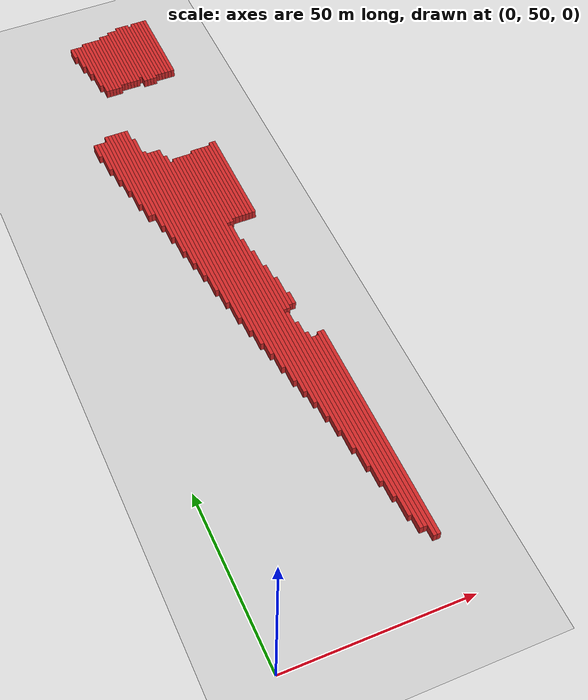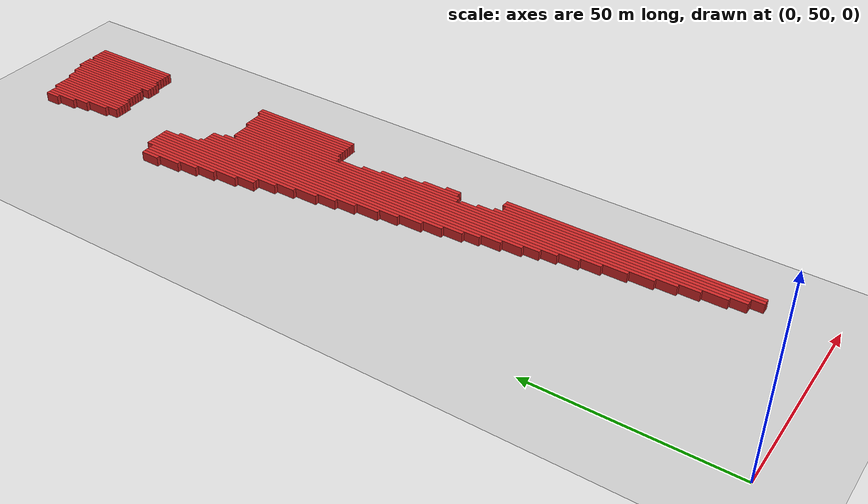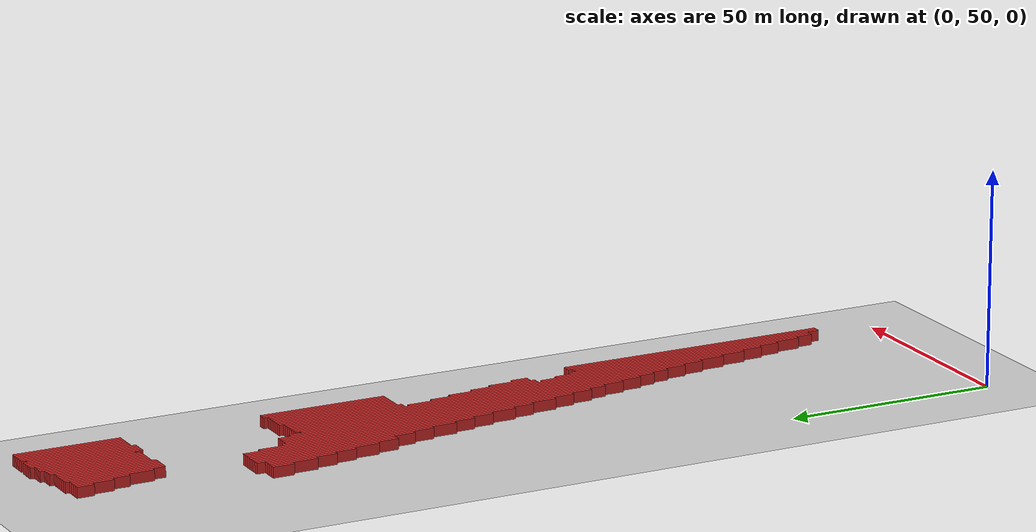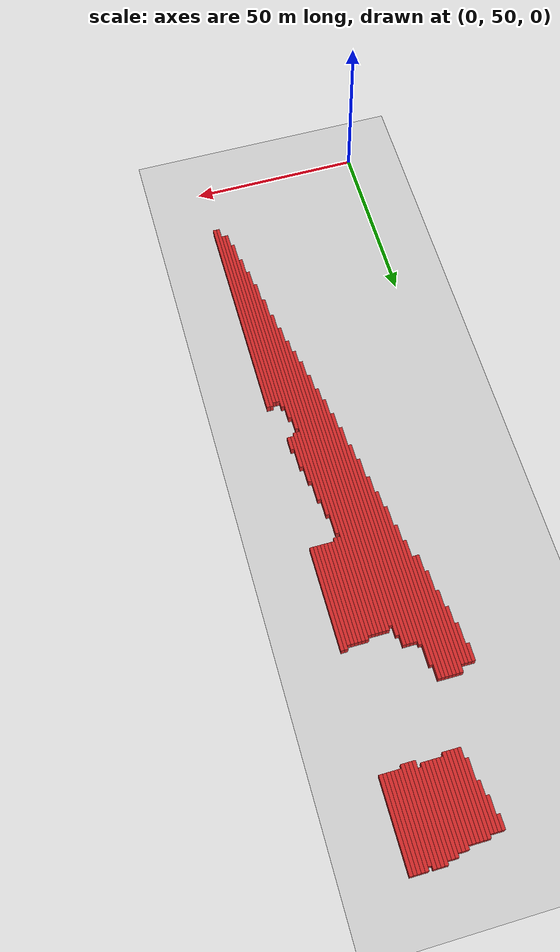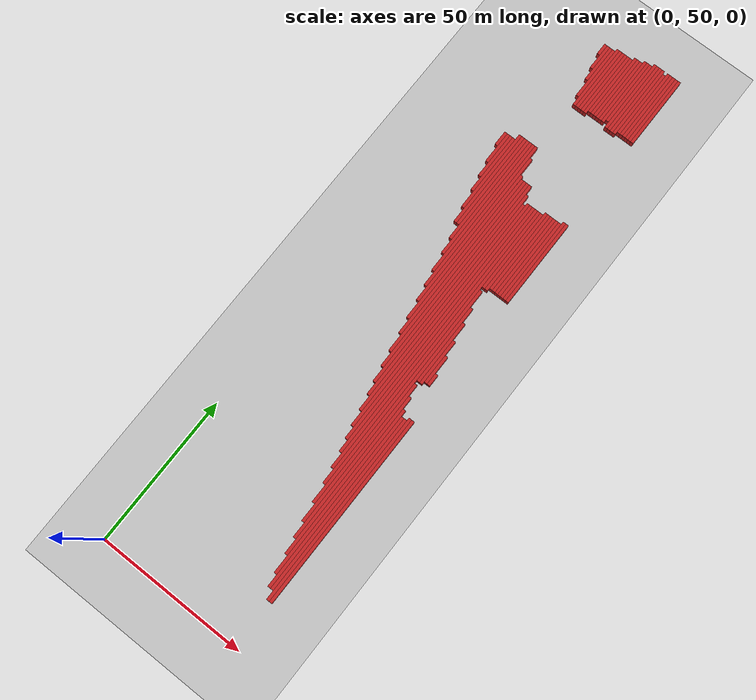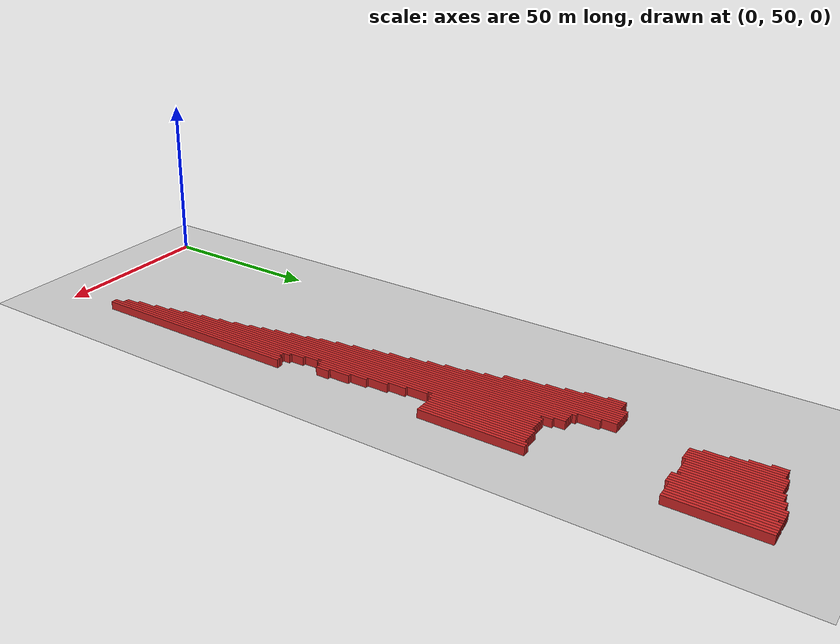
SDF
<sdf version="1.4">
 <world name="1_wall">
  <model name="ground_plane">
   <static>1</static>
   <link name="link">
    <collision name="collision">
     <geometry><plane><normal>0 0 1</normal><size>1000 1000</size></plane></geometry>
     <surface><friction><ode><mu>100</mu><mu2>50</mu2></ode></friction></surface>
    </collision>
    <visual name="visual">
     <cast_shadows>0</cast_shadows>
     <geometry><plane><normal>0 0 1</normal><size>10000 10000</size></plane></geometry>
     <material>
      <script><uri>file://media/materials/scripts/gazebo.material</uri><name>Gazebo/Grey</name></script>
     </material>
    </visual>
    <velocity_decay><linear>0</linear><angular>0</angular></velocity_decay>
   </link>
  </model>
  <model name="Wall_0">
   <static>1</static>
   <link name="Wall_0">
    <collision name="Wall_Collision_0">
     <geometry><box><size>5.0 1.0 2.5</size></box></geometry>
     <pose>0 0 1.25 0 -0 0</pose>
    </collision>
    <visual name="Wall_Visual_0">
     <pose>0 0 1.25 0 -0 0</pose>
     <geometry><box><size>5.0 1.0 2.5</size></box></geometry>
     <material>
      <script><uri>file://media/materials/scripts/gazebo.material</uri><name>Gazebo/Red</name></script>
     </material>
    </visual>
    <velocity_decay><linear>0</linear><angular>0</angular></velocity_decay>
    <pose>16.5 215.5 0 0 0 1.5707963267948966</pose>
   </link>
  </model>
  <model name="Wall_1">
   <static>1</static>
   <link name="Wall_1">
    <collision name="Wall_Collision_1">
     <geometry><box><size>11.0 1.0 2.5</size></box></geometry>
     <pose>0 0 1.25 0 -0 0</pose>
    </collision>
    <visual name="Wall_Visual_1">
     <pose>0 0 1.25 0 -0 0</pose>
     <geometry><box><size>11.0 1.0 2.5</size></box></geometry>
     <material>
      <script><uri>file://media/materials/scripts/gazebo.material</uri><name>Gazebo/Red</name></script>
     </material>
    </visual>
    <velocity_decay><linear>0</linear><angular>0</angular></velocity_decay>
    <pose>17.5 212.5 0 0 0 1.5707963267948966</pose>
   </link>
  </model>
  <model name="Wall_2">
   <static>1</static>
   <link name="Wall_2">
    <collision name="Wall_Collision_2">
     <geometry><box><size>16.0 1.0 2.5</size></box></geometry>
     <pose>0 0 1.25 0 -0 0</pose>
    </collision>
    <visual name="Wall_Visual_2">
     <pose>0 0 1.25 0 -0 0</pose>
     <geometry><box><size>16.0 1.0 2.5</size></box></geometry>
     <material>
      <script><uri>file://media/materials/scripts/gazebo.material</uri><name>Gazebo/Red</name></script>
     </material>
    </visual>
    <velocity_decay><linear>0</linear><angular>0</angular></velocity_decay>
    <pose>18.5 210.0 0 0 0 1.5707963267948966</pose>
   </link>
  </model>
  <model name="Wall_3">
   <static>1</static>
   <link name="Wall_3">
    <collision name="Wall_Collision_3">
     <geometry><box><size>21.0 1.0 2.5</size></box></geometry>
     <pose>0 0 1.25 0 -0 0</pose>
    </collision>
    <visual name="Wall_Visual_3">
     <pose>0 0 1.25 0 -0 0</pose>
     <geometry><box><size>21.0 1.0 2.5</size></box></geometry>
     <material>
      <script><uri>file://media/materials/scripts/gazebo.material</uri><name>Gazebo/Red</name></script>
     </material>
    </visual>
    <velocity_decay><linear>0</linear><angular>0</angular></velocity_decay>
    <pose>19.5 207.5 0 0 0 1.5707963267948966</pose>
   </link>
  </model>
  <model name="Wall_4">
   <static>1</static>
   <link name="Wall_4">
    <collision name="Wall_Collision_4">
     <geometry><box><size>29.0 1.0 2.5</size></box></geometry>
     <pose>0 0 1.25 0 -0 0</pose>
    </collision>
    <visual name="Wall_Visual_4">
     <pose>0 0 1.25 0 -0 0</pose>
     <geometry><box><size>29.0 1.0 2.5</size></box></geometry>
     <material>
      <script><uri>file://media/materials/scripts/gazebo.material</uri><name>Gazebo/Red</name></script>
     </material>
    </visual>
    <velocity_decay><linear>0</linear><angular>0</angular></velocity_decay>
    <pose>20.5 205.5 0 0 0 1.5707963267948966</pose>
   </link>
  </model>
  <model name="Wall_5">
   <static>1</static>
   <link name="Wall_5">
    <collision name="Wall_Collision_5">
     <geometry><box><size>34.0 1.0 2.5</size></box></geometry>
     <pose>0 0 1.25 0 -0 0</pose>
    </collision>
    <visual name="Wall_Visual_5">
     <pose>0 0 1.25 0 -0 0</pose>
     <geometry><box><size>34.0 1.0 2.5</size></box></geometry>
     <material>
      <script><uri>file://media/materials/scripts/gazebo.material</uri><name>Gazebo/Red</name></script>
     </material>
    </visual>
    <velocity_decay><linear>0</linear><angular>0</angular></velocity_decay>
    <pose>21.5 203.0 0 0 0 1.5707963267948966</pose>
   </link>
  </model>
  <model name="Wall_6">
   <static>1</static>
   <link name="Wall_6">
    <collision name="Wall_Collision_6">
     <geometry><box><size>34.0 1.0 2.5</size></box></geometry>
     <pose>0 0 1.25 0 -0 0</pose>
    </collision>
    <visual name="Wall_Visual_6">
     <pose>0 0 1.25 0 -0 0</pose>
     <geometry><box><size>34.0 1.0 2.5</size></box></geometry>
     <material>
      <script><uri>file://media/materials/scripts/gazebo.material</uri><name>Gazebo/Red</name></script>
     </material>
    </visual>
    <velocity_decay><linear>0</linear><angular>0</angular></velocity_decay>
    <pose>22.5 203.0 0 0 0 1.5707963267948966</pose>
   </link>
  </model>
  <model name="Wall_7">
   <static>1</static>
   <link name="Wall_7">
    <collision name="Wall_Collision_7">
     <geometry><box><size>39.0 1.0 2.5</size></box></geometry>
     <pose>0 0 1.25 0 -0 0</pose>
    </collision>
    <visual name="Wall_Visual_7">
     <pose>0 0 1.25 0 -0 0</pose>
     <geometry><box><size>39.0 1.0 2.5</size></box></geometry>
     <material>
      <script><uri>file://media/materials/scripts/gazebo.material</uri><name>Gazebo/Red</name></script>
     </material>
    </visual>
    <velocity_decay><linear>0</linear><angular>0</angular></velocity_decay>
    <pose>23.5 200.5 0 0 0 1.5707963267948966</pose>
   </link>
  </model>
  <model name="Wall_8">
   <static>1</static>
   <link name="Wall_8">
    <collision name="Wall_Collision_8">
     <geometry><box><size>4.0 1.0 2.5</size></box></geometry>
     <pose>0 0 1.25 0 -0 0</pose>
    </collision>
    <visual name="Wall_Visual_8">
     <pose>0 0 1.25 0 -0 0</pose>
     <geometry><box><size>4.0 1.0 2.5</size></box></geometry>
     <material>
      <script><uri>file://media/materials/scripts/gazebo.material</uri><name>Gazebo/Red</name></script>
     </material>
    </visual>
    <velocity_decay><linear>0</linear><angular>0</angular></velocity_decay>
    <pose>23.5 258.0 0 0 0 1.5707963267948966</pose>
   </link>
  </model>
  <model name="Wall_9">
   <static>1</static>
   <link name="Wall_9">
    <collision name="Wall_Collision_9">
     <geometry><box><size>44.0 1.0 2.5</size></box></geometry>
     <pose>0 0 1.25 0 -0 0</pose>
    </collision>
    <visual name="Wall_Visual_9">
     <pose>0 0 1.25 0 -0 0</pose>
     <geometry><box><size>44.0 1.0 2.5</size></box></geometry>
     <material>
      <script><uri>file://media/materials/scripts/gazebo.material</uri><name>Gazebo/Red</name></script>
     </material>
    </visual>
    <velocity_decay><linear>0</linear><angular>0</angular></velocity_decay>
    <pose>24.5 198.0 0 0 0 1.5707963267948966</pose>
   </link>
  </model>
  <model name="Wall_10">
   <static>1</static>
   <link name="Wall_10">
    <collision name="Wall_Collision_10">
     <geometry><box><size>9.0 1.0 2.5</size></box></geometry>
     <pose>0 0 1.25 0 -0 0</pose>
    </collision>
    <visual name="Wall_Visual_10">
     <pose>0 0 1.25 0 -0 0</pose>
     <geometry><box><size>9.0 1.0 2.5</size></box></geometry>
     <material>
      <script><uri>file://media/materials/scripts/gazebo.material</uri><name>Gazebo/Red</name></script>
     </material>
    </visual>
    <velocity_decay><linear>0</linear><angular>0</angular></velocity_decay>
    <pose>24.5 255.5 0 0 0 1.5707963267948966</pose>
   </link>
  </model>
  <model name="Wall_11">
   <static>1</static>
   <link name="Wall_11">
    <collision name="Wall_Collision_11">
     <geometry><box><size>50.0 1.0 2.5</size></box></geometry>
     <pose>0 0 1.25 0 -0 0</pose>
    </collision>
    <visual name="Wall_Visual_11">
     <pose>0 0 1.25 0 -0 0</pose>
     <geometry><box><size>50.0 1.0 2.5</size></box></geometry>
     <material>
      <script><uri>file://media/materials/scripts/gazebo.material</uri><name>Gazebo/Red</name></script>
     </material>
    </visual>
    <velocity_decay><linear>0</linear><angular>0</angular></velocity_decay>
    <pose>25.5 195.0 0 0 0 1.5707963267948966</pose>
   </link>
  </model>
  <model name="Wall_12">
   <static>1</static>
   <link name="Wall_12">
    <collision name="Wall_Collision_12">
     <geometry><box><size>13.0 1.0 2.5</size></box></geometry>
     <pose>0 0 1.25 0 -0 0</pose>
    </collision>
    <visual name="Wall_Visual_12">
     <pose>0 0 1.25 0 -0 0</pose>
     <geometry><box><size>13.0 1.0 2.5</size></box></geometry>
     <material>
      <script><uri>file://media/materials/scripts/gazebo.material</uri><name>Gazebo/Red</name></script>
     </material>
    </visual>
    <velocity_decay><linear>0</linear><angular>0</angular></velocity_decay>
    <pose>25.5 253.5 0 0 0 1.5707963267948966</pose>
   </link>
  </model>
  <model name="Wall_13">
   <static>1</static>
   <link name="Wall_13">
    <collision name="Wall_Collision_13">
     <geometry><box><size>55.0 1.0 2.5</size></box></geometry>
     <pose>0 0 1.25 0 -0 0</pose>
    </collision>
    <visual name="Wall_Visual_13">
     <pose>0 0 1.25 0 -0 0</pose>
     <geometry><box><size>55.0 1.0 2.5</size></box></geometry>
     <material>
      <script><uri>file://media/materials/scripts/gazebo.material</uri><name>Gazebo/Red</name></script>
     </material>
    </visual>
    <velocity_decay><linear>0</linear><angular>0</angular></velocity_decay>
    <pose>26.5 192.5 0 0 0 1.5707963267948966</pose>
   </link>
  </model>
  <model name="Wall_14">
   <static>1</static>
   <link name="Wall_14">
    <collision name="Wall_Collision_14">
     <geometry><box><size>19.0 1.0 2.5</size></box></geometry>
     <pose>0 0 1.25 0 -0 0</pose>
    </collision>
    <visual name="Wall_Visual_14">
     <pose>0 0 1.25 0 -0 0</pose>
     <geometry><box><size>19.0 1.0 2.5</size></box></geometry>
     <material>
      <script><uri>file://media/materials/scripts/gazebo.material</uri><name>Gazebo/Red</name></script>
     </material>
    </visual>
    <velocity_decay><linear>0</linear><angular>0</angular></velocity_decay>
    <pose>26.5 250.5 0 0 0 1.5707963267948966</pose>
   </link>
  </model>
  <model name="Wall_15">
   <static>1</static>
   <link name="Wall_15">
    <collision name="Wall_Collision_15">
     <geometry><box><size>56.0 1.0 2.5</size></box></geometry>
     <pose>0 0 1.25 0 -0 0</pose>
    </collision>
    <visual name="Wall_Visual_15">
     <pose>0 0 1.25 0 -0 0</pose>
     <geometry><box><size>56.0 1.0 2.5</size></box></geometry>
     <material>
      <script><uri>file://media/materials/scripts/gazebo.material</uri><name>Gazebo/Red</name></script>
     </material>
    </visual>
    <velocity_decay><linear>0</linear><angular>0</angular></velocity_decay>
    <pose>27.5 188.0 0 0 0 1.5707963267948966</pose>
   </link>
  </model>
  <model name="Wall_16">
   <static>1</static>
   <link name="Wall_16">
    <collision name="Wall_Collision_16">
     <geometry><box><size>23.0 1.0 2.5</size></box></geometry>
     <pose>0 0 1.25 0 -0 0</pose>
    </collision>
    <visual name="Wall_Visual_16">
     <pose>0 0 1.25 0 -0 0</pose>
     <geometry><box><size>23.0 1.0 2.5</size></box></geometry>
     <material>
      <script><uri>file://media/materials/scripts/gazebo.material</uri><name>Gazebo/Red</name></script>
     </material>
    </visual>
    <velocity_decay><linear>0</linear><angular>0</angular></velocity_decay>
    <pose>27.5 249.5 0 0 0 1.5707963267948966</pose>
   </link>
  </model>
  <model name="Wall_17">
   <static>1</static>
   <link name="Wall_17">
    <collision name="Wall_Collision_17">
     <geometry><box><size>56.0 1.0 2.5</size></box></geometry>
     <pose>0 0 1.25 0 -0 0</pose>
    </collision>
    <visual name="Wall_Visual_17">
     <pose>0 0 1.25 0 -0 0</pose>
     <geometry><box><size>56.0 1.0 2.5</size></box></geometry>
     <material>
      <script><uri>file://media/materials/scripts/gazebo.material</uri><name>Gazebo/Red</name></script>
     </material>
    </visual>
    <velocity_decay><linear>0</linear><angular>0</angular></velocity_decay>
    <pose>28.5 182.0 0 0 0 1.5707963267948966</pose>
   </link>
  </model>
  <model name="Wall_18">
   <static>1</static>
   <link name="Wall_18">
    <collision name="Wall_Collision_18">
     <geometry><box><size>23.0 1.0 2.5</size></box></geometry>
     <pose>0 0 1.25 0 -0 0</pose>
    </collision>
    <visual name="Wall_Visual_18">
     <pose>0 0 1.25 0 -0 0</pose>
     <geometry><box><size>23.0 1.0 2.5</size></box></geometry>
     <material>
      <script><uri>file://media/materials/scripts/gazebo.material</uri><name>Gazebo/Red</name></script>
     </material>
    </visual>
    <velocity_decay><linear>0</linear><angular>0</angular></velocity_decay>
    <pose>28.5 249.5 0 0 0 1.5707963267948966</pose>
   </link>
  </model>
  <model name="Wall_19">
   <static>1</static>
   <link name="Wall_19">
    <collision name="Wall_Collision_19">
     <geometry><box><size>60.0 1.0 2.5</size></box></geometry>
     <pose>0 0 1.25 0 -0 0</pose>
    </collision>
    <visual name="Wall_Visual_19">
     <pose>0 0 1.25 0 -0 0</pose>
     <geometry><box><size>60.0 1.0 2.5</size></box></geometry>
     <material>
      <script><uri>file://media/materials/scripts/gazebo.material</uri><name>Gazebo/Red</name></script>
     </material>
    </visual>
    <velocity_decay><linear>0</linear><angular>0</angular></velocity_decay>
    <pose>29.5 179.0 0 0 0 1.5707963267948966</pose>
   </link>
  </model>
  <model name="Wall_20">
   <static>1</static>
   <link name="Wall_20">
    <collision name="Wall_Collision_20">
     <geometry><box><size>23.0 1.0 2.5</size></box></geometry>
     <pose>0 0 1.25 0 -0 0</pose>
    </collision>
    <visual name="Wall_Visual_20">
     <pose>0 0 1.25 0 -0 0</pose>
     <geometry><box><size>23.0 1.0 2.5</size></box></geometry>
     <material>
      <script><uri>file://media/materials/scripts/gazebo.material</uri><name>Gazebo/Red</name></script>
     </material>
    </visual>
    <velocity_decay><linear>0</linear><angular>0</angular></velocity_decay>
    <pose>29.5 249.5 0 0 0 1.5707963267948966</pose>
   </link>
  </model>
  <model name="Wall_21">
   <static>1</static>
   <link name="Wall_21">
    <collision name="Wall_Collision_21">
     <geometry><box><size>66.0 1.0 2.5</size></box></geometry>
     <pose>0 0 1.25 0 -0 0</pose>
    </collision>
    <visual name="Wall_Visual_21">
     <pose>0 0 1.25 0 -0 0</pose>
     <geometry><box><size>66.0 1.0 2.5</size></box></geometry>
     <material>
      <script><uri>file://media/materials/scripts/gazebo.material</uri><name>Gazebo/Red</name></script>
     </material>
    </visual>
    <velocity_decay><linear>0</linear><angular>0</angular></velocity_decay>
    <pose>30.5 176.0 0 0 0 1.5707963267948966</pose>
   </link>
  </model>
  <model name="Wall_22">
   <static>1</static>
   <link name="Wall_22">
    <collision name="Wall_Collision_22">
     <geometry><box><size>23.0 1.0 2.5</size></box></geometry>
     <pose>0 0 1.25 0 -0 0</pose>
    </collision>
    <visual name="Wall_Visual_22">
     <pose>0 0 1.25 0 -0 0</pose>
     <geometry><box><size>23.0 1.0 2.5</size></box></geometry>
     <material>
      <script><uri>file://media/materials/scripts/gazebo.material</uri><name>Gazebo/Red</name></script>
     </material>
    </visual>
    <velocity_decay><linear>0</linear><angular>0</angular></velocity_decay>
    <pose>30.5 249.5 0 0 0 1.5707963267948966</pose>
   </link>
  </model>
  <model name="Wall_23">
   <static>1</static>
   <link name="Wall_23">
    <collision name="Wall_Collision_23">
     <geometry><box><size>71.0 1.0 2.5</size></box></geometry>
     <pose>0 0 1.25 0 -0 0</pose>
    </collision>
    <visual name="Wall_Visual_23">
     <pose>0 0 1.25 0 -0 0</pose>
     <geometry><box><size>71.0 1.0 2.5</size></box></geometry>
     <material>
      <script><uri>file://media/materials/scripts/gazebo.material</uri><name>Gazebo/Red</name></script>
     </material>
    </visual>
    <velocity_decay><linear>0</linear><angular>0</angular></velocity_decay>
    <pose>31.5 173.5 0 0 0 1.5707963267948966</pose>
   </link>
  </model>
  <model name="Wall_24">
   <static>1</static>
   <link name="Wall_24">
    <collision name="Wall_Collision_24">
     <geometry><box><size>23.0 1.0 2.5</size></box></geometry>
     <pose>0 0 1.25 0 -0 0</pose>
    </collision>
    <visual name="Wall_Visual_24">
     <pose>0 0 1.25 0 -0 0</pose>
     <geometry><box><size>23.0 1.0 2.5</size></box></geometry>
     <material>
      <script><uri>file://media/materials/scripts/gazebo.material</uri><name>Gazebo/Red</name></script>
     </material>
    </visual>
    <velocity_decay><linear>0</linear><angular>0</angular></velocity_decay>
    <pose>31.5 249.5 0 0 0 1.5707963267948966</pose>
   </link>
  </model>
  <model name="Wall_25">
   <static>1</static>
   <link name="Wall_25">
    <collision name="Wall_Collision_25">
     <geometry><box><size>76.0 1.0 2.5</size></box></geometry>
     <pose>0 0 1.25 0 -0 0</pose>
    </collision>
    <visual name="Wall_Visual_25">
     <pose>0 0 1.25 0 -0 0</pose>
     <geometry><box><size>76.0 1.0 2.5</size></box></geometry>
     <material>
      <script><uri>file://media/materials/scripts/gazebo.material</uri><name>Gazebo/Red</name></script>
     </material>
    </visual>
    <velocity_decay><linear>0</linear><angular>0</angular></velocity_decay>
    <pose>32.5 171.0 0 0 0 1.5707963267948966</pose>
   </link>
  </model>
  <model name="Wall_26">
   <static>1</static>
   <link name="Wall_26">
    <collision name="Wall_Collision_26">
     <geometry><box><size>22.0 1.0 2.5</size></box></geometry>
     <pose>0 0 1.25 0 -0 0</pose>
    </collision>
    <visual name="Wall_Visual_26">
     <pose>0 0 1.25 0 -0 0</pose>
     <geometry><box><size>22.0 1.0 2.5</size></box></geometry>
     <material>
      <script><uri>file://media/materials/scripts/gazebo.material</uri><name>Gazebo/Red</name></script>
     </material>
    </visual>
    <velocity_decay><linear>0</linear><angular>0</angular></velocity_decay>
    <pose>32.5 250.0 0 0 0 1.5707963267948966</pose>
   </link>
  </model>
  <model name="Wall_27">
   <static>1</static>
   <link name="Wall_27">
    <collision name="Wall_Collision_27">
     <geometry><box><size>77.0 1.0 2.5</size></box></geometry>
     <pose>0 0 1.25 0 -0 0</pose>
    </collision>
    <visual name="Wall_Visual_27">
     <pose>0 0 1.25 0 -0 0</pose>
     <geometry><box><size>77.0 1.0 2.5</size></box></geometry>
     <material>
      <script><uri>file://media/materials/scripts/gazebo.material</uri><name>Gazebo/Red</name></script>
     </material>
    </visual>
    <velocity_decay><linear>0</linear><angular>0</angular></velocity_decay>
    <pose>33.5 167.5 0 0 0 1.5707963267948966</pose>
   </link>
  </model>
  <model name="Wall_28">
   <static>1</static>
   <link name="Wall_28">
    <collision name="Wall_Collision_28">
     <geometry><box><size>23.0 1.0 2.5</size></box></geometry>
     <pose>0 0 1.25 0 -0 0</pose>
    </collision>
    <visual name="Wall_Visual_28">
     <pose>0 0 1.25 0 -0 0</pose>
     <geometry><box><size>23.0 1.0 2.5</size></box></geometry>
     <material>
      <script><uri>file://media/materials/scripts/gazebo.material</uri><name>Gazebo/Red</name></script>
     </material>
    </visual>
    <velocity_decay><linear>0</linear><angular>0</angular></velocity_decay>
    <pose>33.5 250.5 0 0 0 1.5707963267948966</pose>
   </link>
  </model>
  <model name="Wall_29">
   <static>1</static>
   <link name="Wall_29">
    <collision name="Wall_Collision_29">
     <geometry><box><size>79.0 1.0 2.5</size></box></geometry>
     <pose>0 0 1.25 0 -0 0</pose>
    </collision>
    <visual name="Wall_Visual_29">
     <pose>0 0 1.25 0 -0 0</pose>
     <geometry><box><size>79.0 1.0 2.5</size></box></geometry>
     <material>
      <script><uri>file://media/materials/scripts/gazebo.material</uri><name>Gazebo/Red</name></script>
     </material>
    </visual>
    <velocity_decay><linear>0</linear><angular>0</angular></velocity_decay>
    <pose>34.5 163.5 0 0 0 1.5707963267948966</pose>
   </link>
  </model>
  <model name="Wall_30">
   <static>1</static>
   <link name="Wall_30">
    <collision name="Wall_Collision_30">
     <geometry><box><size>23.0 1.0 2.5</size></box></geometry>
     <pose>0 0 1.25 0 -0 0</pose>
    </collision>
    <visual name="Wall_Visual_30">
     <pose>0 0 1.25 0 -0 0</pose>
     <geometry><box><size>23.0 1.0 2.5</size></box></geometry>
     <material>
      <script><uri>file://media/materials/scripts/gazebo.material</uri><name>Gazebo/Red</name></script>
     </material>
    </visual>
    <velocity_decay><linear>0</linear><angular>0</angular></velocity_decay>
    <pose>34.5 250.5 0 0 0 1.5707963267948966</pose>
   </link>
  </model>
  <model name="Wall_31">
   <static>1</static>
   <link name="Wall_31">
    <collision name="Wall_Collision_31">
     <geometry><box><size>85.0 1.0 2.5</size></box></geometry>
     <pose>0 0 1.25 0 -0 0</pose>
    </collision>
    <visual name="Wall_Visual_31">
     <pose>0 0 1.25 0 -0 0</pose>
     <geometry><box><size>85.0 1.0 2.5</size></box></geometry>
     <material>
      <script><uri>file://media/materials/scripts/gazebo.material</uri><name>Gazebo/Red</name></script>
     </material>
    </visual>
    <velocity_decay><linear>0</linear><angular>0</angular></velocity_decay>
    <pose>35.5 161.5 0 0 0 1.5707963267948966</pose>
   </link>
  </model>
  <model name="Wall_32">
   <static>1</static>
   <link name="Wall_32">
    <collision name="Wall_Collision_32">
     <geometry><box><size>23.0 1.0 2.5</size></box></geometry>
     <pose>0 0 1.25 0 -0 0</pose>
    </collision>
    <visual name="Wall_Visual_32">
     <pose>0 0 1.25 0 -0 0</pose>
     <geometry><box><size>23.0 1.0 2.5</size></box></geometry>
     <material>
      <script><uri>file://media/materials/scripts/gazebo.material</uri><name>Gazebo/Red</name></script>
     </material>
    </visual>
    <velocity_decay><linear>0</linear><angular>0</angular></velocity_decay>
    <pose>35.5 250.5 0 0 0 1.5707963267948966</pose>
   </link>
  </model>
  <model name="Wall_33">
   <static>1</static>
   <link name="Wall_33">
    <collision name="Wall_Collision_33">
     <geometry><box><size>89.0 1.0 2.5</size></box></geometry>
     <pose>0 0 1.25 0 -0 0</pose>
    </collision>
    <visual name="Wall_Visual_33">
     <pose>0 0 1.25 0 -0 0</pose>
     <geometry><box><size>89.0 1.0 2.5</size></box></geometry>
     <material>
      <script><uri>file://media/materials/scripts/gazebo.material</uri><name>Gazebo/Red</name></script>
     </material>
    </visual>
    <velocity_decay><linear>0</linear><angular>0</angular></velocity_decay>
    <pose>36.5 159.5 0 0 0 1.5707963267948966</pose>
   </link>
  </model>
  <model name="Wall_34">
   <static>1</static>
   <link name="Wall_34">
    <collision name="Wall_Collision_34">
     <geometry><box><size>24.0 1.0 2.5</size></box></geometry>
     <pose>0 0 1.25 0 -0 0</pose>
    </collision>
    <visual name="Wall_Visual_34">
     <pose>0 0 1.25 0 -0 0</pose>
     <geometry><box><size>24.0 1.0 2.5</size></box></geometry>
     <material>
      <script><uri>file://media/materials/scripts/gazebo.material</uri><name>Gazebo/Red</name></script>
     </material>
    </visual>
    <velocity_decay><linear>0</linear><angular>0</angular></velocity_decay>
    <pose>36.5 251.0 0 0 0 1.5707963267948966</pose>
   </link>
  </model>
  <model name="Wall_35">
   <static>1</static>
   <link name="Wall_35">
    <collision name="Wall_Collision_35">
     <geometry><box><size>93.0 1.0 2.5</size></box></geometry>
     <pose>0 0 1.25 0 -0 0</pose>
    </collision>
    <visual name="Wall_Visual_35">
     <pose>0 0 1.25 0 -0 0</pose>
     <geometry><box><size>93.0 1.0 2.5</size></box></geometry>
     <material>
      <script><uri>file://media/materials/scripts/gazebo.material</uri><name>Gazebo/Red</name></script>
     </material>
    </visual>
    <velocity_decay><linear>0</linear><angular>0</angular></velocity_decay>
    <pose>37.5 157.5 0 0 0 1.5707963267948966</pose>
   </link>
  </model>
  <model name="Wall_36">
   <static>1</static>
   <link name="Wall_36">
    <collision name="Wall_Collision_36">
     <geometry><box><size>24.0 1.0 2.5</size></box></geometry>
     <pose>0 0 1.25 0 -0 0</pose>
    </collision>
    <visual name="Wall_Visual_36">
     <pose>0 0 1.25 0 -0 0</pose>
     <geometry><box><size>24.0 1.0 2.5</size></box></geometry>
     <material>
      <script><uri>file://media/materials/scripts/gazebo.material</uri><name>Gazebo/Red</name></script>
     </material>
    </visual>
    <velocity_decay><linear>0</linear><angular>0</angular></velocity_decay>
    <pose>37.5 251.0 0 0 0 1.5707963267948966</pose>
   </link>
  </model>
  <model name="Wall_37">
   <static>1</static>
   <link name="Wall_37">
    <collision name="Wall_Collision_37">
     <geometry><box><size>98.0 1.0 2.5</size></box></geometry>
     <pose>0 0 1.25 0 -0 0</pose>
    </collision>
    <visual name="Wall_Visual_37">
     <pose>0 0 1.25 0 -0 0</pose>
     <geometry><box><size>98.0 1.0 2.5</size></box></geometry>
     <material>
      <script><uri>file://media/materials/scripts/gazebo.material</uri><name>Gazebo/Red</name></script>
     </material>
    </visual>
    <velocity_decay><linear>0</linear><angular>0</angular></velocity_decay>
    <pose>38.5 155.0 0 0 0 1.5707963267948966</pose>
   </link>
  </model>
  <model name="Wall_38">
   <static>1</static>
   <link name="Wall_38">
    <collision name="Wall_Collision_38">
     <geometry><box><size>23.0 1.0 2.5</size></box></geometry>
     <pose>0 0 1.25 0 -0 0</pose>
    </collision>
    <visual name="Wall_Visual_38">
     <pose>0 0 1.25 0 -0 0</pose>
     <geometry><box><size>23.0 1.0 2.5</size></box></geometry>
     <material>
      <script><uri>file://media/materials/scripts/gazebo.material</uri><name>Gazebo/Red</name></script>
     </material>
    </visual>
    <velocity_decay><linear>0</linear><angular>0</angular></velocity_decay>
    <pose>38.5 251.5 0 0 0 1.5707963267948966</pose>
   </link>
  </model>
  <model name="Wall_39">
   <static>1</static>
   <link name="Wall_39">
    <collision name="Wall_Collision_39">
     <geometry><box><size>103.0 1.0 2.5</size></box></geometry>
     <pose>0 0 1.25 0 -0 0</pose>
    </collision>
    <visual name="Wall_Visual_39">
     <pose>0 0 1.25 0 -0 0</pose>
     <geometry><box><size>103.0 1.0 2.5</size></box></geometry>
     <material>
      <script><uri>file://media/materials/scripts/gazebo.material</uri><name>Gazebo/Red</name></script>
     </material>
    </visual>
    <velocity_decay><linear>0</linear><angular>0</angular></velocity_decay>
    <pose>39.5 152.5 0 0 0 1.5707963267948966</pose>
   </link>
  </model>
  <model name="Wall_40">
   <static>1</static>
   <link name="Wall_40">
    <collision name="Wall_Collision_40">
     <geometry><box><size>26.0 1.0 2.5</size></box></geometry>
     <pose>0 0 1.25 0 -0 0</pose>
    </collision>
    <visual name="Wall_Visual_40">
     <pose>0 0 1.25 0 -0 0</pose>
     <geometry><box><size>26.0 1.0 2.5</size></box></geometry>
     <material>
      <script><uri>file://media/materials/scripts/gazebo.material</uri><name>Gazebo/Red</name></script>
     </material>
    </visual>
    <velocity_decay><linear>0</linear><angular>0</angular></velocity_decay>
    <pose>39.5 251.0 0 0 0 1.5707963267948966</pose>
   </link>
  </model>
  <model name="Wall_41">
   <static>1</static>
   <link name="Wall_41">
    <collision name="Wall_Collision_41">
     <geometry><box><size>79.0 1.0 2.5</size></box></geometry>
     <pose>0 0 1.25 0 -0 0</pose>
    </collision>
    <visual name="Wall_Visual_41">
     <pose>0 0 1.25 0 -0 0</pose>
     <geometry><box><size>79.0 1.0 2.5</size></box></geometry>
     <material>
      <script><uri>file://media/materials/scripts/gazebo.material</uri><name>Gazebo/Red</name></script>
     </material>
    </visual>
    <velocity_decay><linear>0</linear><angular>0</angular></velocity_decay>
    <pose>40.5 134.5 0 0 0 1.5707963267948966</pose>
   </link>
  </model>
  <model name="Wall_42">
   <static>1</static>
   <link name="Wall_42">
    <collision name="Wall_Collision_42">
     <geometry><box><size>29.0 1.0 2.5</size></box></geometry>
     <pose>0 0 1.25 0 -0 0</pose>
    </collision>
    <visual name="Wall_Visual_42">
     <pose>0 0 1.25 0 -0 0</pose>
     <geometry><box><size>29.0 1.0 2.5</size></box></geometry>
     <material>
      <script><uri>file://media/materials/scripts/gazebo.material</uri><name>Gazebo/Red</name></script>
     </material>
    </visual>
    <velocity_decay><linear>0</linear><angular>0</angular></velocity_decay>
    <pose>40.5 189.5 0 0 0 1.5707963267948966</pose>
   </link>
  </model>
  <model name="Wall_43">
   <static>1</static>
   <link name="Wall_43">
    <collision name="Wall_Collision_43">
     <geometry><box><size>26.0 1.0 2.5</size></box></geometry>
     <pose>0 0 1.25 0 -0 0</pose>
    </collision>
    <visual name="Wall_Visual_43">
     <pose>0 0 1.25 0 -0 0</pose>
     <geometry><box><size>26.0 1.0 2.5</size></box></geometry>
     <material>
      <script><uri>file://media/materials/scripts/gazebo.material</uri><name>Gazebo/Red</name></script>
     </material>
    </visual>
    <velocity_decay><linear>0</linear><angular>0</angular></velocity_decay>
    <pose>40.5 251.0 0 0 0 1.5707963267948966</pose>
   </link>
  </model>
  <model name="Wall_44">
   <static>1</static>
   <link name="Wall_44">
    <collision name="Wall_Collision_44">
     <geometry><box><size>79.0 1.0 2.5</size></box></geometry>
     <pose>0 0 1.25 0 -0 0</pose>
    </collision>
    <visual name="Wall_Visual_44">
     <pose>0 0 1.25 0 -0 0</pose>
     <geometry><box><size>79.0 1.0 2.5</size></box></geometry>
     <material>
      <script><uri>file://media/materials/scripts/gazebo.material</uri><name>Gazebo/Red</name></script>
     </material>
    </visual>
    <velocity_decay><linear>0</linear><angular>0</angular></velocity_decay>
    <pose>41.5 128.5 0 0 0 1.5707963267948966</pose>
   </link>
  </model>
  <model name="Wall_45">
   <static>1</static>
   <link name="Wall_45">
    <collision name="Wall_Collision_45">
     <geometry><box><size>30.0 1.0 2.5</size></box></geometry>
     <pose>0 0 1.25 0 -0 0</pose>
    </collision>
    <visual name="Wall_Visual_45">
     <pose>0 0 1.25 0 -0 0</pose>
     <geometry><box><size>30.0 1.0 2.5</size></box></geometry>
     <material>
      <script><uri>file://media/materials/scripts/gazebo.material</uri><name>Gazebo/Red</name></script>
     </material>
    </visual>
    <velocity_decay><linear>0</linear><angular>0</angular></velocity_decay>
    <pose>41.5 190.0 0 0 0 1.5707963267948966</pose>
   </link>
  </model>
  <model name="Wall_46">
   <static>1</static>
   <link name="Wall_46">
    <collision name="Wall_Collision_46">
     <geometry><box><size>26.0 1.0 2.5</size></box></geometry>
     <pose>0 0 1.25 0 -0 0</pose>
    </collision>
    <visual name="Wall_Visual_46">
     <pose>0 0 1.25 0 -0 0</pose>
     <geometry><box><size>26.0 1.0 2.5</size></box></geometry>
     <material>
      <script><uri>file://media/materials/scripts/gazebo.material</uri><name>Gazebo/Red</name></script>
     </material>
    </visual>
    <velocity_decay><linear>0</linear><angular>0</angular></velocity_decay>
    <pose>41.5 251.0 0 0 0 1.5707963267948966</pose>
   </link>
  </model>
  <model name="Wall_47">
   <static>1</static>
   <link name="Wall_47">
    <collision name="Wall_Collision_47">
     <geometry><box><size>56.0 1.0 2.5</size></box></geometry>
     <pose>0 0 1.25 0 -0 0</pose>
    </collision>
    <visual name="Wall_Visual_47">
     <pose>0 0 1.25 0 -0 0</pose>
     <geometry><box><size>56.0 1.0 2.5</size></box></geometry>
     <material>
      <script><uri>file://media/materials/scripts/gazebo.material</uri><name>Gazebo/Red</name></script>
     </material>
    </visual>
    <velocity_decay><linear>0</linear><angular>0</angular></velocity_decay>
    <pose>42.5 112.0 0 0 0 1.5707963267948966</pose>
   </link>
  </model>
  <model name="Wall_48">
   <static>1</static>
   <link name="Wall_48">
    <collision name="Wall_Collision_48">
     <geometry><box><size>22.0 1.0 2.5</size></box></geometry>
     <pose>0 0 1.25 0 -0 0</pose>
    </collision>
    <visual name="Wall_Visual_48">
     <pose>0 0 1.25 0 -0 0</pose>
     <geometry><box><size>22.0 1.0 2.5</size></box></geometry>
     <material>
      <script><uri>file://media/materials/scripts/gazebo.material</uri><name>Gazebo/Red</name></script>
     </material>
    </visual>
    <velocity_decay><linear>0</linear><angular>0</angular></velocity_decay>
    <pose>42.5 152.0 0 0 0 1.5707963267948966</pose>
   </link>
  </model>
  <model name="Wall_49">
   <static>1</static>
   <link name="Wall_49">
    <collision name="Wall_Collision_49">
     <geometry><box><size>29.0 1.0 2.5</size></box></geometry>
     <pose>0 0 1.25 0 -0 0</pose>
    </collision>
    <visual name="Wall_Visual_49">
     <pose>0 0 1.25 0 -0 0</pose>
     <geometry><box><size>29.0 1.0 2.5</size></box></geometry>
     <material>
      <script><uri>file://media/materials/scripts/gazebo.material</uri><name>Gazebo/Red</name></script>
     </material>
    </visual>
    <velocity_decay><linear>0</linear><angular>0</angular></velocity_decay>
    <pose>42.5 190.5 0 0 0 1.5707963267948966</pose>
   </link>
  </model>
  <model name="Wall_50">
   <static>1</static>
   <link name="Wall_50">
    <collision name="Wall_Collision_50">
     <geometry><box><size>26.0 1.0 2.5</size></box></geometry>
     <pose>0 0 1.25 0 -0 0</pose>
    </collision>
    <visual name="Wall_Visual_50">
     <pose>0 0 1.25 0 -0 0</pose>
     <geometry><box><size>26.0 1.0 2.5</size></box></geometry>
     <material>
      <script><uri>file://media/materials/scripts/gazebo.material</uri><name>Gazebo/Red</name></script>
     </material>
    </visual>
    <velocity_decay><linear>0</linear><angular>0</angular></velocity_decay>
    <pose>42.5 251.0 0 0 0 1.5707963267948966</pose>
   </link>
  </model>
  <model name="Wall_51">
   <static>1</static>
   <link name="Wall_51">
    <collision name="Wall_Collision_51">
     <geometry><box><size>57.0 1.0 2.5</size></box></geometry>
     <pose>0 0 1.25 0 -0 0</pose>
    </collision>
    <visual name="Wall_Visual_51">
     <pose>0 0 1.25 0 -0 0</pose>
     <geometry><box><size>57.0 1.0 2.5</size></box></geometry>
     <material>
      <script><uri>file://media/materials/scripts/gazebo.material</uri><name>Gazebo/Red</name></script>
     </material>
    </visual>
    <velocity_decay><linear>0</linear><angular>0</angular></velocity_decay>
    <pose>43.5 107.5 0 0 0 1.5707963267948966</pose>
   </link>
  </model>
  <model name="Wall_52">
   <static>1</static>
   <link name="Wall_52">
    <collision name="Wall_Collision_52">
     <geometry><box><size>16.0 1.0 2.5</size></box></geometry>
     <pose>0 0 1.25 0 -0 0</pose>
    </collision>
    <visual name="Wall_Visual_52">
     <pose>0 0 1.25 0 -0 0</pose>
     <geometry><box><size>16.0 1.0 2.5</size></box></geometry>
     <material>
      <script><uri>file://media/materials/scripts/gazebo.material</uri><name>Gazebo/Red</name></script>
     </material>
    </visual>
    <velocity_decay><linear>0</linear><angular>0</angular></velocity_decay>
    <pose>43.5 149.0 0 0 0 1.5707963267948966</pose>
   </link>
  </model>
  <model name="Wall_53">
   <static>1</static>
   <link name="Wall_53">
    <collision name="Wall_Collision_53">
     <geometry><box><size>29.0 1.0 2.5</size></box></geometry>
     <pose>0 0 1.25 0 -0 0</pose>
    </collision>
    <visual name="Wall_Visual_53">
     <pose>0 0 1.25 0 -0 0</pose>
     <geometry><box><size>29.0 1.0 2.5</size></box></geometry>
     <material>
      <script><uri>file://media/materials/scripts/gazebo.material</uri><name>Gazebo/Red</name></script>
     </material>
    </visual>
    <velocity_decay><linear>0</linear><angular>0</angular></velocity_decay>
    <pose>43.5 190.5 0 0 0 1.5707963267948966</pose>
   </link>
  </model>
  <model name="Wall_54">
   <static>1</static>
   <link name="Wall_54">
    <collision name="Wall_Collision_54">
     <geometry><box><size>24.0 1.0 2.5</size></box></geometry>
     <pose>0 0 1.25 0 -0 0</pose>
    </collision>
    <visual name="Wall_Visual_54">
     <pose>0 0 1.25 0 -0 0</pose>
     <geometry><box><size>24.0 1.0 2.5</size></box></geometry>
     <material>
      <script><uri>file://media/materials/scripts/gazebo.material</uri><name>Gazebo/Red</name></script>
     </material>
    </visual>
    <velocity_decay><linear>0</linear><angular>0</angular></velocity_decay>
    <pose>43.5 251.0 0 0 0 1.5707963267948966</pose>
   </link>
  </model>
  <model name="Wall_55">
   <static>1</static>
   <link name="Wall_55">
    <collision name="Wall_Collision_55">
     <geometry><box><size>59.0 1.0 2.5</size></box></geometry>
     <pose>0 0 1.25 0 -0 0</pose>
    </collision>
    <visual name="Wall_Visual_55">
     <pose>0 0 1.25 0 -0 0</pose>
     <geometry><box><size>59.0 1.0 2.5</size></box></geometry>
     <material>
      <script><uri>file://media/materials/scripts/gazebo.material</uri><name>Gazebo/Red</name></script>
     </material>
    </visual>
    <velocity_decay><linear>0</linear><angular>0</angular></velocity_decay>
    <pose>44.5 102.5 0 0 0 1.5707963267948966</pose>
   </link>
  </model>
  <model name="Wall_56">
   <static>1</static>
   <link name="Wall_56">
    <collision name="Wall_Collision_56">
     <geometry><box><size>10.0 1.0 2.5</size></box></geometry>
     <pose>0 0 1.25 0 -0 0</pose>
    </collision>
    <visual name="Wall_Visual_56">
     <pose>0 0 1.25 0 -0 0</pose>
     <geometry><box><size>10.0 1.0 2.5</size></box></geometry>
     <material>
      <script><uri>file://media/materials/scripts/gazebo.material</uri><name>Gazebo/Red</name></script>
     </material>
    </visual>
    <velocity_decay><linear>0</linear><angular>0</angular></velocity_decay>
    <pose>44.5 147.0 0 0 0 1.5707963267948966</pose>
   </link>
  </model>
  <model name="Wall_57">
   <static>1</static>
   <link name="Wall_57">
    <collision name="Wall_Collision_57">
     <geometry><box><size>29.0 1.0 2.5</size></box></geometry>
     <pose>0 0 1.25 0 -0 0</pose>
    </collision>
    <visual name="Wall_Visual_57">
     <pose>0 0 1.25 0 -0 0</pose>
     <geometry><box><size>29.0 1.0 2.5</size></box></geometry>
     <material>
      <script><uri>file://media/materials/scripts/gazebo.material</uri><name>Gazebo/Red</name></script>
     </material>
    </visual>
    <velocity_decay><linear>0</linear><angular>0</angular></velocity_decay>
    <pose>44.5 190.5 0 0 0 1.5707963267948966</pose>
   </link>
  </model>
  <model name="Wall_58">
   <static>1</static>
   <link name="Wall_58">
    <collision name="Wall_Collision_58">
     <geometry><box><size>25.0 1.0 2.5</size></box></geometry>
     <pose>0 0 1.25 0 -0 0</pose>
    </collision>
    <visual name="Wall_Visual_58">
     <pose>0 0 1.25 0 -0 0</pose>
     <geometry><box><size>25.0 1.0 2.5</size></box></geometry>
     <material>
      <script><uri>file://media/materials/scripts/gazebo.material</uri><name>Gazebo/Red</name></script>
     </material>
    </visual>
    <velocity_decay><linear>0</linear><angular>0</angular></velocity_decay>
    <pose>44.5 251.5 0 0 0 1.5707963267948966</pose>
   </link>
  </model>
  <model name="Wall_59">
   <static>1</static>
   <link name="Wall_59">
    <collision name="Wall_Collision_59">
     <geometry><box><size>61.0 1.0 2.5</size></box></geometry>
     <pose>0 0 1.25 0 -0 0</pose>
    </collision>
    <visual name="Wall_Visual_59">
     <pose>0 0 1.25 0 -0 0</pose>
     <geometry><box><size>61.0 1.0 2.5</size></box></geometry>
     <material>
      <script><uri>file://media/materials/scripts/gazebo.material</uri><name>Gazebo/Red</name></script>
     </material>
    </visual>
    <velocity_decay><linear>0</linear><angular>0</angular></velocity_decay>
    <pose>45.5 99.5 0 0 0 1.5707963267948966</pose>
   </link>
  </model>
  <model name="Wall_60">
   <static>1</static>
   <link name="Wall_60">
    <collision name="Wall_Collision_60">
     <geometry><box><size>4.0 1.0 2.5</size></box></geometry>
     <pose>0 0 1.25 0 -0 0</pose>
    </collision>
    <visual name="Wall_Visual_60">
     <pose>0 0 1.25 0 -0 0</pose>
     <geometry><box><size>4.0 1.0 2.5</size></box></geometry>
     <material>
      <script><uri>file://media/materials/scripts/gazebo.material</uri><name>Gazebo/Red</name></script>
     </material>
    </visual>
    <velocity_decay><linear>0</linear><angular>0</angular></velocity_decay>
    <pose>45.5 144.0 0 0 0 1.5707963267948966</pose>
   </link>
  </model>
  <model name="Wall_61">
   <static>1</static>
   <link name="Wall_61">
    <collision name="Wall_Collision_61">
     <geometry><box><size>29.0 1.0 2.5</size></box></geometry>
     <pose>0 0 1.25 0 -0 0</pose>
    </collision>
    <visual name="Wall_Visual_61">
     <pose>0 0 1.25 0 -0 0</pose>
     <geometry><box><size>29.0 1.0 2.5</size></box></geometry>
     <material>
      <script><uri>file://media/materials/scripts/gazebo.material</uri><name>Gazebo/Red</name></script>
     </material>
    </visual>
    <velocity_decay><linear>0</linear><angular>0</angular></velocity_decay>
    <pose>45.5 190.5 0 0 0 1.5707963267948966</pose>
   </link>
  </model>
  <model name="Wall_62">
   <static>1</static>
   <link name="Wall_62">
    <collision name="Wall_Collision_62">
     <geometry><box><size>25.0 1.0 2.5</size></box></geometry>
     <pose>0 0 1.25 0 -0 0</pose>
    </collision>
    <visual name="Wall_Visual_62">
     <pose>0 0 1.25 0 -0 0</pose>
     <geometry><box><size>25.0 1.0 2.5</size></box></geometry>
     <material>
      <script><uri>file://media/materials/scripts/gazebo.material</uri><name>Gazebo/Red</name></script>
     </material>
    </visual>
    <velocity_decay><linear>0</linear><angular>0</angular></velocity_decay>
    <pose>45.5 251.5 0 0 0 1.5707963267948966</pose>
   </link>
  </model>
  <model name="Wall_63">
   <static>1</static>
   <link name="Wall_63">
    <collision name="Wall_Collision_63">
     <geometry><box><size>61.0 1.0 2.5</size></box></geometry>
     <pose>0 0 1.25 0 -0 0</pose>
    </collision>
    <visual name="Wall_Visual_63">
     <pose>0 0 1.25 0 -0 0</pose>
     <geometry><box><size>61.0 1.0 2.5</size></box></geometry>
     <material>
      <script><uri>file://media/materials/scripts/gazebo.material</uri><name>Gazebo/Red</name></script>
     </material>
    </visual>
    <velocity_decay><linear>0</linear><angular>0</angular></velocity_decay>
    <pose>46.5 99.5 0 0 0 1.5707963267948966</pose>
   </link>
  </model>
  <model name="Wall_64">
   <static>1</static>
   <link name="Wall_64">
    <collision name="Wall_Collision_64">
     <geometry><box><size>29.0 1.0 2.5</size></box></geometry>
     <pose>0 0 1.25 0 -0 0</pose>
    </collision>
    <visual name="Wall_Visual_64">
     <pose>0 0 1.25 0 -0 0</pose>
     <geometry><box><size>29.0 1.0 2.5</size></box></geometry>
     <material>
      <script><uri>file://media/materials/scripts/gazebo.material</uri><name>Gazebo/Red</name></script>
     </material>
    </visual>
    <velocity_decay><linear>0</linear><angular>0</angular></velocity_decay>
    <pose>46.5 190.5 0 0 0 1.5707963267948966</pose>
   </link>
  </model>
  <model name="Wall_65">
   <static>1</static>
   <link name="Wall_65">
    <collision name="Wall_Collision_65">
     <geometry><box><size>25.0 1.0 2.5</size></box></geometry>
     <pose>0 0 1.25 0 -0 0</pose>
    </collision>
    <visual name="Wall_Visual_65">
     <pose>0 0 1.25 0 -0 0</pose>
     <geometry><box><size>25.0 1.0 2.5</size></box></geometry>
     <material>
      <script><uri>file://media/materials/scripts/gazebo.material</uri><name>Gazebo/Red</name></script>
     </material>
    </visual>
    <velocity_decay><linear>0</linear><angular>0</angular></velocity_decay>
    <pose>46.5 251.5 0 0 0 1.5707963267948966</pose>
   </link>
  </model>
  <model name="Wall_66">
   <static>1</static>
   <link name="Wall_66">
    <collision name="Wall_Collision_66">
     <geometry><box><size>65.0 1.0 2.5</size></box></geometry>
     <pose>0 0 1.25 0 -0 0</pose>
    </collision>
    <visual name="Wall_Visual_66">
     <pose>0 0 1.25 0 -0 0</pose>
     <geometry><box><size>65.0 1.0 2.5</size></box></geometry>
     <material>
      <script><uri>file://media/materials/scripts/gazebo.material</uri><name>Gazebo/Red</name></script>
     </material>
    </visual>
    <velocity_decay><linear>0</linear><angular>0</angular></velocity_decay>
    <pose>47.5 98.5 0 0 0 1.5707963267948966</pose>
   </link>
  </model>
  <model name="Wall_67">
   <static>1</static>
   <link name="Wall_67">
    <collision name="Wall_Collision_67">
     <geometry><box><size>30.0 1.0 2.5</size></box></geometry>
     <pose>0 0 1.25 0 -0 0</pose>
    </collision>
    <visual name="Wall_Visual_67">
     <pose>0 0 1.25 0 -0 0</pose>
     <geometry><box><size>30.0 1.0 2.5</size></box></geometry>
     <material>
      <script><uri>file://media/materials/scripts/gazebo.material</uri><name>Gazebo/Red</name></script>
     </material>
    </visual>
    <velocity_decay><linear>0</linear><angular>0</angular></velocity_decay>
    <pose>47.5 191.0 0 0 0 1.5707963267948966</pose>
   </link>
  </model>
  <model name="Wall_68">
   <static>1</static>
   <link name="Wall_68">
    <collision name="Wall_Collision_68">
     <geometry><box><size>25.0 1.0 2.5</size></box></geometry>
     <pose>0 0 1.25 0 -0 0</pose>
    </collision>
    <visual name="Wall_Visual_68">
     <pose>0 0 1.25 0 -0 0</pose>
     <geometry><box><size>25.0 1.0 2.5</size></box></geometry>
     <material>
      <script><uri>file://media/materials/scripts/gazebo.material</uri><name>Gazebo/Red</name></script>
     </material>
    </visual>
    <velocity_decay><linear>0</linear><angular>0</angular></velocity_decay>
    <pose>47.5 251.5 0 0 0 1.5707963267948966</pose>
   </link>
  </model>
  <model name="Wall_69">
   <static>1</static>
   <link name="Wall_69">
    <collision name="Wall_Collision_69">
     <geometry><box><size>65.0 1.0 2.5</size></box></geometry>
     <pose>0 0 1.25 0 -0 0</pose>
    </collision>
    <visual name="Wall_Visual_69">
     <pose>0 0 1.25 0 -0 0</pose>
     <geometry><box><size>65.0 1.0 2.5</size></box></geometry>
     <material>
      <script><uri>file://media/materials/scripts/gazebo.material</uri><name>Gazebo/Red</name></script>
     </material>
    </visual>
    <velocity_decay><linear>0</linear><angular>0</angular></velocity_decay>
    <pose>48.5 98.5 0 0 0 1.5707963267948966</pose>
   </link>
  </model>
  <model name="Wall_70">
   <static>1</static>
   <link name="Wall_70">
    <collision name="Wall_Collision_70">
     <geometry><box><size>30.0 1.0 2.5</size></box></geometry>
     <pose>0 0 1.25 0 -0 0</pose>
    </collision>
    <visual name="Wall_Visual_70">
     <pose>0 0 1.25 0 -0 0</pose>
     <geometry><box><size>30.0 1.0 2.5</size></box></geometry>
     <material>
      <script><uri>file://media/materials/scripts/gazebo.material</uri><name>Gazebo/Red</name></script>
     </material>
    </visual>
    <velocity_decay><linear>0</linear><angular>0</angular></velocity_decay>
    <pose>48.5 191.0 0 0 0 1.5707963267948966</pose>
   </link>
  </model>
  <model name="Wall_71">
   <static>1</static>
   <link name="Wall_71">
    <collision name="Wall_Collision_71">
     <geometry><box><size>25.0 1.0 2.5</size></box></geometry>
     <pose>0 0 1.25 0 -0 0</pose>
    </collision>
    <visual name="Wall_Visual_71">
     <pose>0 0 1.25 0 -0 0</pose>
     <geometry><box><size>25.0 1.0 2.5</size></box></geometry>
     <material>
      <script><uri>file://media/materials/scripts/gazebo.material</uri><name>Gazebo/Red</name></script>
     </material>
    </visual>
    <velocity_decay><linear>0</linear><angular>0</angular></velocity_decay>
    <pose>48.5 251.5 0 0 0 1.5707963267948966</pose>
   </link>
  </model>
 </world>
</sdf>
